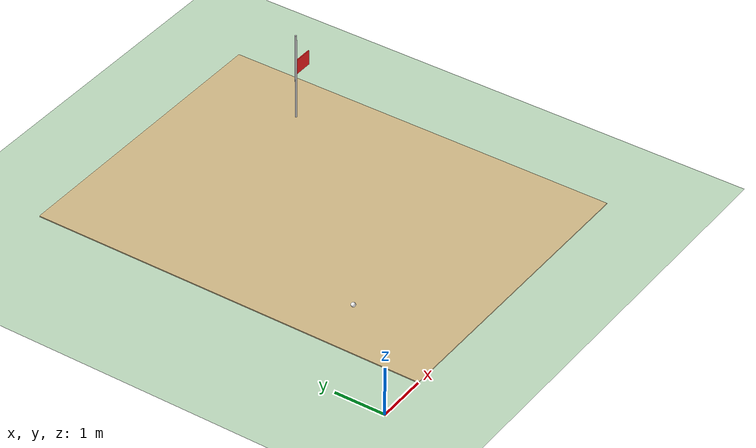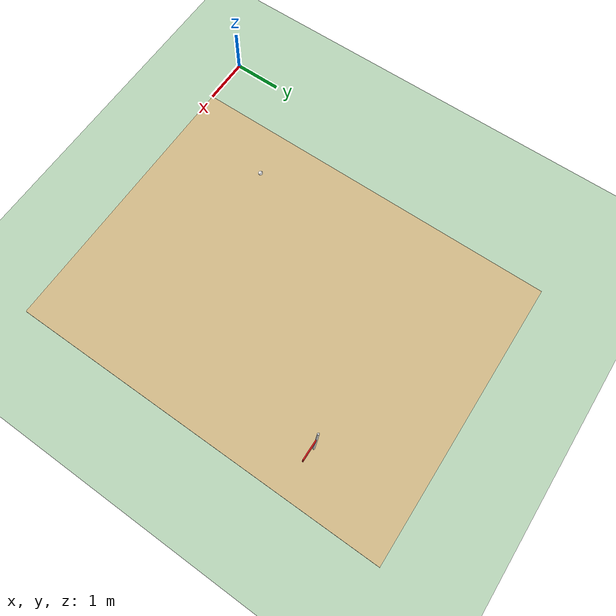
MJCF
<mujoco model="golf_course_env">
    <compiler assetdir="assets" autolimits="true"/>

    <option timestep="0.002" gravity="0 0 -9.81"/>

    <asset>
        <texture type="skybox" builtin="gradient" rgb1="0.3 0.5 0.7" rgb2="0 0 0" width="512" height="3072"/>

        <texture type="2d" name="grass_texture" builtin="checker" mark="edge" rgb1="0.13 0.55 0.13" rgb2="0.1 0.45 0.1" width="300" height="300" markrgb="0.2 0.6 0.2"/>
        <material name="grass_mat" texture="grass_texture" texrepeat="10 10" texuniform="true"/>

        <texture type="2d" name="sand_texture" builtin="flat" rgb1="0.85 0.75 0.55" width="100" height="100"/>
        <material name="sand_mat" texture="sand_texture"/>
    </asset>

    <worldbody>
        <light mode="fixed" directional="true" diffuse="0.8 0.8 0.8" specular="0.3 0.3 0.3" pos="0 0 10" dir="0 0 -1"/>

        <geom name="fairway" type="plane" size="20 20 0.1" material="grass_mat" friction="0.6 0.005 0.0001"/>

        <geom name="sand_bunker" type="box" size="3 4 0.01" pos="4 4 0.005" material="sand_mat" friction="1.2 0.01 0.001"/>

        <body name="golf_hole" pos="6 6 0">
            <geom type="cylinder" size="0.15 0.001" rgba="0 0 0 1" pos="0 0 0.001"/>
            <geom type="cylinder" size="0.02 1.2" pos="0 0 0.6" rgba="0.8 0.8 0.8 1"/>
            <geom type="box" size="0.2 0.01 0.15" pos="0.2 0 1.1" rgba="0.9 0.1 0.1 1"/>
        </body>

        <body name="golf_ball" pos="2 2 0.1">
            <freejoint name="ball_joint"/> <geom name="ball_geom" type="sphere" size="0.045" mass="0.045" rgba="1 1 1 1" friction="0.4 0.005 0.0001"/>
        </body>

        <include file="go2.xml"/>
    </worldbody>
</mujoco>

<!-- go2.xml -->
<mujoco model="go2_description">
  <compiler angle="radian" meshdir="assets/"/>

  <asset>
    <mesh name="base_0"          file="base_0.obj"/>
    <mesh name="base_1"          file="base_1.obj"/>
    <mesh name="base_2"          file="base_2.obj"/>
    <mesh name="base_3"          file="base_3.obj"/>
    <mesh name="base_4"  		 file="base_4.obj"/>
    <mesh name="hip_0" 			 file="hip_0.obj"/>
    <mesh name="hip_1" 			 file="hip_1.obj"/>
    <mesh name="thigh_0" 		 file="thigh_0.obj"/>
    <mesh name="thigh_1" 		 file="thigh_1.obj"/>
    <mesh name="thigh_mirror_0"  file="thigh_mirror_0.obj"/>
    <mesh name="thigh_mirror_1"  file="thigh_mirror_1.obj"/>
    <mesh name="calf_0" 		 file="calf_0.obj"/>
    <mesh name="calf_1" 		 file="calf_1.obj"/>
    <mesh name="calf_mirror_0"   file="calf_mirror_0.obj"/>
    <mesh name="calf_mirror_1"   file="calf_mirror_1.obj"/>
    <mesh name="foot"            file="foot.obj"/>
  </asset>

  <default>
      <geom contype="1" conaffinity="1" friction="0.6 0.3 0.3" rgba="0.5 0.6 0.7 1" margin="0.001" group="0"/>
      <motor ctrlrange="-33.5 33.5" ctrllimited="true"/>

      <joint type="hinge" armature="0.01" damping="0.2" frictionloss="0.2" />
  </default>

  <worldbody>

    <body name="base" pos="0 0 0">
		<freejoint name="root"/>
		<inertial pos="0.021112 0 -0.00536" mass="6.921" fullinertia="0.02448 0.098077 0.107 0.00012166 0.0014849 -3.12E-05"/>
		<geom type="mesh"  contype="0" conaffinity="0" group="1" density="0" mesh="base_0" rgba="0 0 0 1"  />
		<geom mesh="base_0" rgba="0 0 0 1" type="mesh" contype="0" conaffinity="0" group="1" density="0" />
		<geom mesh="base_1" rgba="0 0 0 1" type="mesh" contype="0" conaffinity="0" group="1" density="0" />
		<geom mesh="base_2" rgba="0 0 0 1" type="mesh" contype="0" conaffinity="0" group="1" density="0" />
		<geom mesh="base_3" rgba="0 0 0 1" type="mesh" contype="0" conaffinity="0" group="1" density="0" />
		<geom mesh="base_4" rgba="0.671705 0.692426 0.774270 1" type="mesh" contype="0" conaffinity="0" group="1" density="0" />
		<geom size="0.1881 0.04675 0.057" type="box" rgba="1 1 1 1"/>
		<geom size="0.05 0.045" pos="0.285 0 0.01" type="cylinder"/>
		<geom size="0.047" pos="0.293 0 -0.06"/>

		<body name="FL_hip" pos="0.1934 0.0465 0">
		  <inertial pos="-0.0054 0.00194 -0.000105" quat="0.497014 0.499245 0.505462 0.498237" mass="0.678" diaginertia="0.00088403 0.000596003 0.000479967"/>
		  <joint name="FL_hip_joint" type="hinge" pos="0 0 0" axis="1 0 0" range="-1.0472 1.0472" limited="true" actuatorfrcrange="-0.9472 0.9472" stiffness="15" damping="2"/>
		  <geom mesh="hip_0" rgba=".9 .95 .95 1" type="mesh" contype="0" conaffinity="0" group="1" density="0" />
          <geom mesh="hip_1" rgba="0.671705 0.692426 0.774270 1" type="mesh" contype="0" conaffinity="0" group="1" density="0" />
		  <geom size="0.046 0.02" pos="0 0.08 0" quat="1 1 0 0" type="cylinder"/>
		  <geom size="0.046 0.02" pos="0 0.08 0" quat="0.707107 0.707107 0 0" type="cylinder" rgba="1 1 1 1"/>

		  <body name="FL_thigh" pos="0 0.0955 0">
			<inertial pos="-0.00374 -0.0223 -0.0327" quat="0.829533 0.0847635 -0.0200632 0.551623" mass="1.152" diaginertia="0.00594973 0.00584149 0.000878787"/>
			<joint name="FL_thigh_joint" type="hinge" pos="0 0 0" axis="0 1 0" range="-1.5708 3.4907" limited="true"  actuatorfrcrange="-1.5708 3.4907" stiffness="15" damping="2"/>
			<geom mesh="thigh_0" rgba=".9 .95 .95 1" type="mesh" contype="0" conaffinity="0" group="1" density="0" />
          	<geom mesh="thigh_1" rgba="0.671705 0.692426 0.774270 1" type="mesh" contype="0" conaffinity="0" group="1" density="0" />
			<geom size="0.055 0.01225 0.017" pos="0 0 -0.1065" quat="0.707107 0 0.707107 0" type="box" rgba="1 1 1 1"/>

			<body name="FL_calf" pos="0 0 -0.213">
			  <inertial pos="0.00629595 -0.000622121 -0.141417" quat="0.710672 0.00154099 -0.00450087 0.703508" mass="0.241352" diaginertia="0.0014901 0.00146356 5.31397e-05"/>
			  <joint name="FL_calf_joint" type="hinge" pos="0 0 0" axis="0 1 0" range="-2.7227 -0.83776" limited="true" actuatorfrcrange="-45.43 45.43" stiffness="15" damping="2"/>
			  <geom mesh="calf_0" rgba="0.671705 0.692426 0.774270 1" type="mesh" contype="0" conaffinity="0" group="1" density="0" />
              <geom mesh="calf_1" rgba="0 0 0 1" type="mesh" contype="0" conaffinity="0" group="1" density="0" />
              <geom pos="0 0 -0.213" mesh="foot" type="mesh" contype="0" conaffinity="0" group="1" density="0"  rgba="0 0 0 1"/>
			  <geom size="0.012 0.06" pos="0.008 0 -0.06" quat="0.994493 0 -0.104807 0" type="cylinder" rgba="1 1 1 1"/>
			  <geom size="0.011 0.0325" pos="0.02 0 -0.148" quat="0.999688 0 0.0249974 0" type="cylinder"/>
			  <geom size="0.0155 0.015" pos="0.00801333 0 -0.18745" quat="0.965093 0 0.261909 0" type="cylinder"/>

				<body name="FL_foot" pos="0 0 -0.213">
					<geom size="0.022" pos="0 0 0" rgba="0 0 0 1" friction="0.8 0.02 0.01" type="sphere"/>
				</body>
			</body>
		  </body>
		</body>

		<body name="FR_hip" pos="0.1934 -0.0465 0">
		  <inertial pos="-0.0054 -0.00194 -0.000105" quat="0.498237 0.505462 0.499245 0.497014" mass="0.678" diaginertia="0.00088403 0.000596003 0.000479967"/>
		  <joint name="FR_hip_joint" type="hinge" pos="0 0 0" axis="1 0 0" range="-1.0472 1.0472" limited="true" actuatorfrcrange="-0.9472 0.9472" stiffness="15" damping="2"/>
          <geom mesh="hip_0" rgba=".9 .95 .95 1" type="mesh" contype="0" conaffinity="0" group="1" density="0"  quat="4.63268e-05 1 0 0"/>
          <geom mesh="hip_1" rgba="0.671705 0.692426 0.774270 1" type="mesh" contype="0" conaffinity="0" group="1" density="0"  quat="4.63268e-05 1 0 0" />
		  <geom size="0.046 0.02" pos="0 -0.08 0" quat="0.707107 0.707107 0 0" type="cylinder" rgba="1 1 1 1"/>

		  <body name="FR_thigh" pos="0 -0.0955 0">
			<inertial pos="-0.00374 0.0223 -0.0327" quat="0.551623 -0.0200632 0.0847635 0.829533" mass="1.152" diaginertia="0.00594973 0.00584149 0.000878787" />
			<joint name="FR_thigh_joint" type="hinge"  pos="0 0 0" axis="0 1 0" range="-1.5708 3.4907" limited="true"  actuatorfrcrange="-1.5708 3.4907" stiffness="15" damping="2"/>
            <geom mesh="thigh_mirror_0" rgba=".9 .95 .95 1" type="mesh" contype="0" conaffinity="0" group="1" density="0" />
            <geom mesh="thigh_mirror_1" rgba="0.671705 0.692426 0.774270 1" type="mesh" contype="0" conaffinity="0" group="1" density="0" />
			<geom size="0.055 0.01225 0.017" pos="0 0 -0.1065" quat="0.707107 0 0.707107 0" type="box" rgba="1 1 1 1"/>

			<body name="FR_calf" pos="0 0 -0.213">
			  <inertial pos="0.00629595 0.000622121 -0.141417" quat="0.703508 -0.00450087 0.00154099 0.710672" mass="0.241352" diaginertia="0.0014901 0.00146356 5.31397e-05"/>
			  <joint name="FR_calf_joint" type="hinge"  pos="0 0 0" axis="0 1 0" range="-2.7227 -0.83776" limited="true" actuatorfrcrange="-45.43 45.43" stiffness="15" damping="2"/>
			  <geom mesh="calf_mirror_0" rgba="0.671705 0.692426 0.774270 1" type="mesh" contype="0" conaffinity="0" group="1" density="0" />
              <geom mesh="calf_mirror_1" rgba="0 0 0 1" type="mesh" contype="0" conaffinity="0" group="1" density="0" />
              <geom pos="0 0 -0.213" mesh="foot" type="mesh" contype="0" conaffinity="0" group="1" density="0"  rgba="0 0 0 1"/>
			  <geom size="0.013 0.06" pos="0.01 0 -0.06" quat="0.995004 0 -0.0998334 0" type="cylinder" rgba="1 1 1 1"/>
			  <geom size="0.011 0.0325" pos="0.02 0 -0.148" quat="0.999688 0 0.0249974 0" type="cylinder"/>
			  <geom size="0.0155 0.015" pos="0.00801333 0 -0.18745" quat="0.965093 0 0.261909 0" type="cylinder"/>

				<body name="FR_foot" pos="0 0 -0.213">
					<geom size="0.022" pos="0 0 0" rgba="0 0 0 1" friction="0.8 0.02 0.01" type="sphere" />
				</body>
			</body>
		  </body>
		</body>

		<body name="RL_hip" pos="-0.1934 0.0465 0">
		  <inertial pos="0.0054 0.00194 -0.000105" quat="0.505462 0.498237 0.497014 0.499245" mass="0.678" diaginertia="0.00088403 0.000596003 0.000479967"/>
		  <joint name="RL_hip_joint" type="hinge" pos="0 0 0" axis="1 0 0" range="-1.0472 1.0472" limited="true" actuatorfrcrange="-0.9472 0.9472" stiffness="15" damping="2"/>
		  <geom mesh="hip_0" rgba=".9 .95 .95 1" type="mesh" contype="0" conaffinity="0" group="1" density="0"  quat="4.63268e-05 0 1 0"/>
          <geom mesh="hip_1" rgba="0.671705 0.692426 0.774270 1" type="mesh" contype="0" conaffinity="0" group="1" density="0"  quat="4.63268e-05 0 1 0"/>
		  <geom size="0.046 0.02" pos="0 0.08 0" quat="0.707107 0.707107 0 0" type="cylinder" rgba="1 1 1 1"/>

		  <body name="RL_thigh" pos="0 0.0955 0">
			<inertial pos="-0.00374 -0.0223 -0.0327" quat="0.829533 0.0847635 -0.0200632 0.551623" mass="1.152" diaginertia="0.00594973 0.00584149 0.000878787"/>
			<joint name="RL_thigh_joint" type="hinge" pos="0 0 0" axis="0 1 0" range="-0.5236 4.5379" limited="true" actuatorfrcrange="-0.5236 4.5379" stiffness="15" damping="2"/>
            <geom mesh="thigh_0" rgba=".9 .95 .95 1" type="mesh" contype="0" conaffinity="0" group="1" density="0" />
            <geom mesh="thigh_1" rgba="0.671705 0.692426 0.774270 1" type="mesh" contype="0" conaffinity="0" group="1" density="0" />
			<geom size="0.055 0.01225 0.017" pos="0 0 -0.1065" quat="0.707107 0 0.707107 0" type="box" rgba="1 1 1 1"/>

			<body name="RL_calf" pos="0 0 -0.213">
			  <inertial pos="0.00629595 -0.000622121 -0.141417" quat="0.710672 0.00154099 -0.00450087 0.703508" mass="0.241352" diaginertia="0.0014901 0.00146356 5.31397e-05"/>
			  <joint name="RL_calf_joint" type="hinge"  pos="0 0 0" axis="0 1 0" range="-2.7227 -0.83776" limited="true" actuatorfrcrange="-45.43 45.43" stiffness="15" damping="2"/>
			  <geom mesh="calf_0" rgba="0.671705 0.692426 0.774270 1" type="mesh" contype="0" conaffinity="0" group="1" density="0" />
              <geom mesh="calf_1" rgba="0 0 0 1" type="mesh" contype="0" conaffinity="0" group="1" density="0" />
              <geom pos="0 0 -0.213" mesh="foot" type="mesh" contype="0" conaffinity="0" group="1" density="0"  rgba="0 0 0 1"/>
			  <geom size="0.013 0.06" pos="0.01 0 -0.06" quat="0.995004 0 -0.0998334 0" type="cylinder" rgba="1 1 1 1"/>
			  <geom size="0.011 0.0325" pos="0.02 0 -0.148" quat="0.999688 0 0.0249974 0" type="cylinder"/>
			  <geom size="0.0155 0.015" pos="0.00801333 0 -0.18745" quat="0.965093 0 0.261909 0" type="cylinder"/>

				<body name="RL_foot" pos="0 0 -0.213">
					<geom size="0.022" pos="0 0 0" rgba="0 0 0 1" friction="0.8 0.02 0.01" type="sphere"/>
				</body>
			</body>
		  </body>
		</body>

		<body name="RR_hip" pos="-0.1934 -0.0465 0">
		  <inertial pos="0.0054 -0.00194 -0.000105" quat="0.499245 0.497014 0.498237 0.505462" mass="0.678" diaginertia="0.00088403 0.000596003 0.000479967"/>
		  <joint name="RR_hip_joint" type="hinge"  pos="0 0 0" axis="1 0 0" range="-1.0472 1.0472" limited="true"  actuatorfrcrange="-0.9472 0.9472" stiffness="15" damping="2"/>
		  <geom mesh="hip_0" rgba=".9 .95 .95 1" type="mesh" contype="0" conaffinity="0" group="1" density="0"  quat="2.14617e-09 4.63268e-05 4.63268e-05 -1"/>
          <geom mesh="hip_1" rgba="0.671705 0.692426 0.774270 1" type="mesh" contype="0" conaffinity="0" group="1" density="0"  quat="2.14617e-09 4.63268e-05 4.63268e-05 -1"/>
		  <geom size="0.046 0.02" pos="0 -0.08 0" quat="0.707107 0.707107 0 0" type="cylinder" rgba="1 1 1 1"/>

		  <body name="RR_thigh" pos="0 -0.0955 0">
			<inertial pos="-0.00374 0.0223 -0.0327" quat="0.551623 -0.0200632 0.0847635 0.829533" mass="1.152" diaginertia="0.00594973 0.00584149 0.000878787"/>
			<joint name="RR_thigh_joint" type="hinge" pos="0 0 0" axis="0 1 0" range="-0.5236 4.5379" limited="true" actuatorfrcrange="-0.5236 4.5379" stiffness="15" damping="2"/>
			<geom mesh="thigh_mirror_0" rgba=".9 .95 .95 1" type="mesh" contype="0" conaffinity="0" group="1" density="0" />
            <geom mesh="thigh_mirror_1" rgba="0.671705 0.692426 0.774270 1" type="mesh" contype="0" conaffinity="0" group="1" density="0" />
			<geom size="0.055 0.01225 0.017" pos="0 0 -0.1065" quat="0.707107 0 0.707107 0" type="box" rgba="1 1 1 1"/>

			<body name="RR_calf" pos="0 0 -0.213">
			  <inertial pos="0.00629595 0.000622121 -0.141417" quat="0.703508 -0.00450087 0.00154099 0.710672" mass="0.241352" diaginertia="0.0014901 0.00146356 5.31397e-05"/>
			  <joint name="RR_calf_joint" type="hinge"  pos="0 0 0" axis="0 1 0" range="-2.7227 -0.83776" limited="true" actuatorfrcrange="-45.43 45.43" stiffness="15" damping="2"/>
			  <geom mesh="calf_mirror_0" rgba="0.671705 0.692426 0.774270 1" type="mesh" contype="0" conaffinity="0" group="1" density="0" />
              <geom mesh="calf_mirror_1" rgba="0 0 0 1" type="mesh" contype="0" conaffinity="0" group="1" density="0" />
              <geom pos="0 0 -0.213" mesh="foot" type="mesh" contype="0" conaffinity="0" group="1" density="0"  rgba="0 0 0 1"/>
			  <geom size="0.013 0.06" pos="0.01 0 -0.06" quat="0.995004 0 -0.0998334 0" type="cylinder" rgba="1 1 1 1"/>
			  <geom size="0.011 0.0325" pos="0.02 0 -0.148" quat="0.999688 0 0.0249974 0" type="cylinder"/>
			  <geom size="0.0155 0.015" pos="0.00801333 0 -0.18745" quat="0.965093 0 0.261909 0" type="cylinder"/>

				<body name="RR_foot" pos="0 0 -0.213">
					<geom size="0.022" pos="0 0 0" rgba="0 0 0 1" friction="0.8 0.02 0.01" type="sphere"/>
				</body>

			</body>
		  </body>
		</body>

	 </body>
  </worldbody>

  <actuator>
    <motor  name="FR_hip"    gear="23.7" joint="FR_hip_joint"/>
    <motor  name="FR_thigh"  gear="23.7" joint="FR_thigh_joint"/>
    <motor  name="FR_calf"   gear="35.5" joint="FR_calf_joint"/>

	<motor  name="FL_hip"    gear="23.7" joint="FL_hip_joint"/>
    <motor  name="FL_thigh"  gear="23.7" joint="FL_thigh_joint"/>
    <motor  name="FL_calf"   gear="35.5" joint="FL_calf_joint"/>

    <motor  name="RR_hip"    gear="23.7" joint="RR_hip_joint"/>
    <motor  name="RR_thigh"  gear="23.7" joint="RR_thigh_joint"/>
    <motor  name="RR_calf"   gear="35.5" joint="RR_calf_joint"/>

    <motor  name="RL_hip"    gear="23.7" joint="RL_hip_joint"/>
    <motor  name="RL_thigh"  gear="23.7" joint="RL_thigh_joint"/>
    <motor  name="RL_calf"   gear="35.5" joint="RL_calf_joint"/>
  </actuator>

    <!-- setup scene -->
  <statistic center="1.0 0.7 1.0" extent="0.8"/>
  <visual>
    <headlight diffuse="0.6 0.6 0.6" ambient="0.1 0.1 0.1" specular="0.9 0.9 0.9"/>
    <rgba haze="0.15 0.25 0.35 1"/>
    <global azimuth="-140" elevation="-20"/>
  </visual>
  <asset>
    <texture type="skybox" builtin="flat" rgb1="0 0 0" rgb2="0 0 0" width="512" height="3072"/>
    <texture type="2d" name="groundplane" builtin="checker" mark="edge" rgb1="0.2 0.3 0.4" rgb2="0.1 0.2 0.3" markrgb="0.8 0.8 0.8" width="300" height="300"/>
    <material name="groundplane" texture="groundplane" texuniform="true" texrepeat="5 5" reflectance="0.2"/>
  </asset>
  <worldbody>
    <light pos="1 0 3.5" dir="0 0 -1" directional="true"/>
    <geom name="floor" size="0 0 0.05" type="plane" material="groundplane"/>
  </worldbody>

</mujoco>
